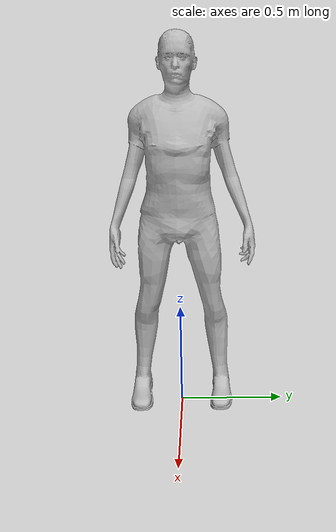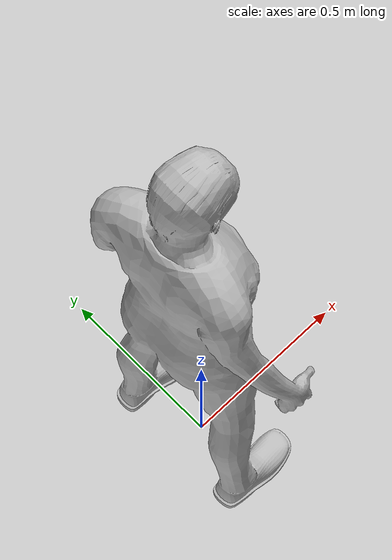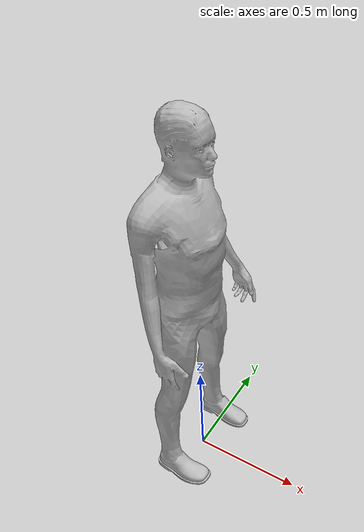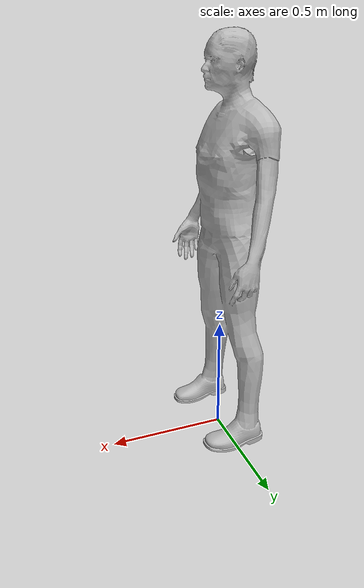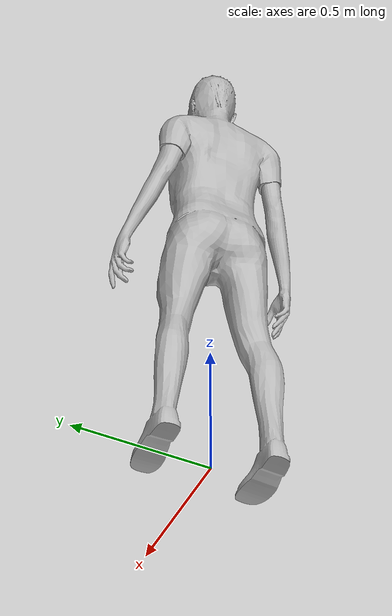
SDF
<?xml version="1.0" ?>
<sdf version="1.5">
    <model name="myman">
        <link name="link">
            <inertial>
                <pose> 0 -0.1 0.95 0 0 0</pose>
                <mass>80.0</mass>
                <inertia>
                    <ixx>24.88</ixx>
                    <ixy>0</ixy>
                    <ixz>0</ixz>
                    <iyy>25.73</iyy>
                    <iyz>0</iyz>
                    <izz>2.48</izz>
                </inertia>
            </inertial>

            <collision name="bottom">
                <pose>0 0 0.01 0 0 1.57</pose>
                <geometry>
                    <box>
                        <size>0.5 0.35 0.02</size>
                    </box>
                </geometry>
            </collision>

            <collision name="person">
                <pose>0 0 0.02 0 0 1.57</pose>
                <geometry>
                    <mesh>
                        <uri>../materials/meshes_myman/myman_2.dae</uri>
                    </mesh>
                </geometry>
            </collision>

            <visual name="visual">
                <pose>0 0 0.02 0 0 1.57</pose>
                <geometry>
                    <mesh>
                        <uri>../materials/meshes_myman/myman_2.dae</uri>
                    </mesh>
                </geometry>
            </visual>
        </link>
    </model>
</sdf>
